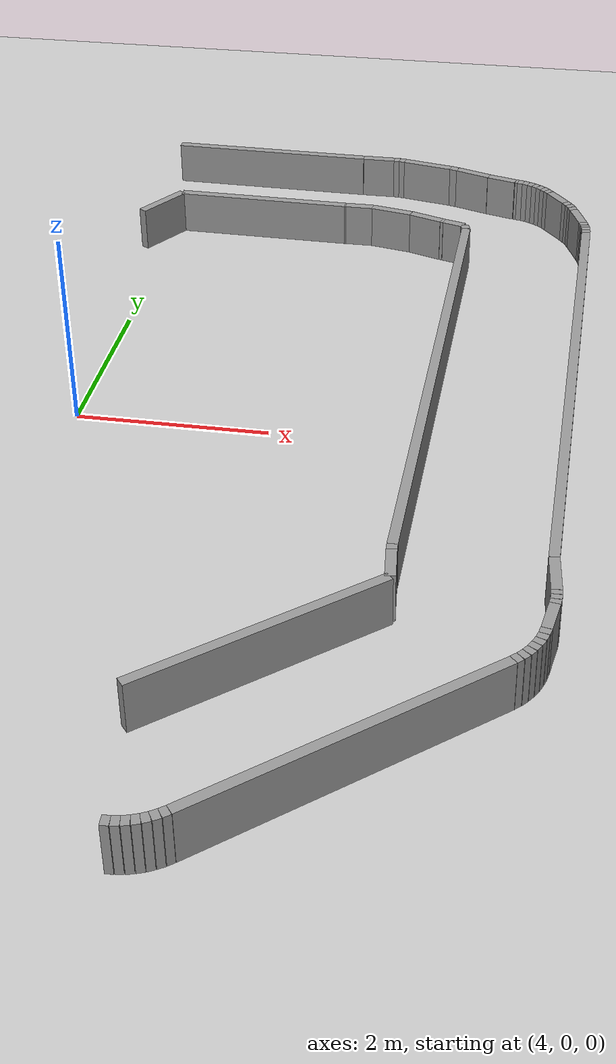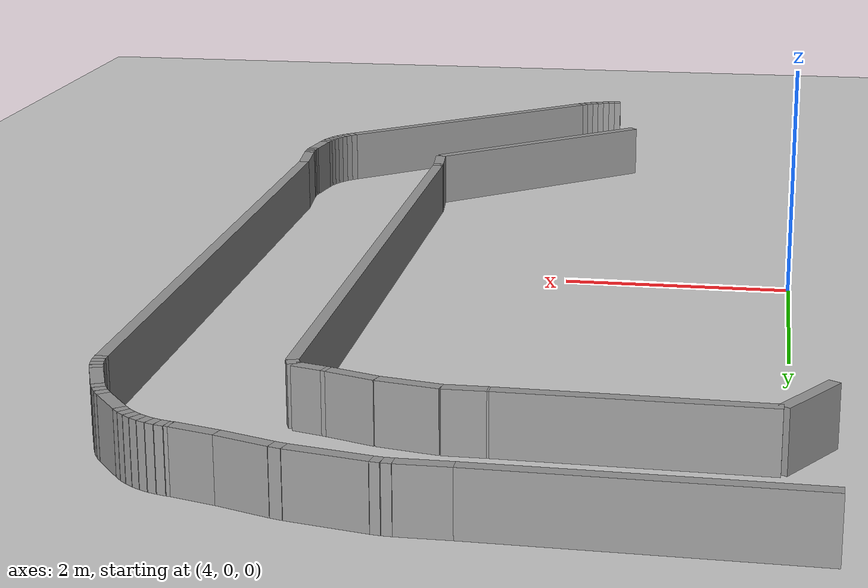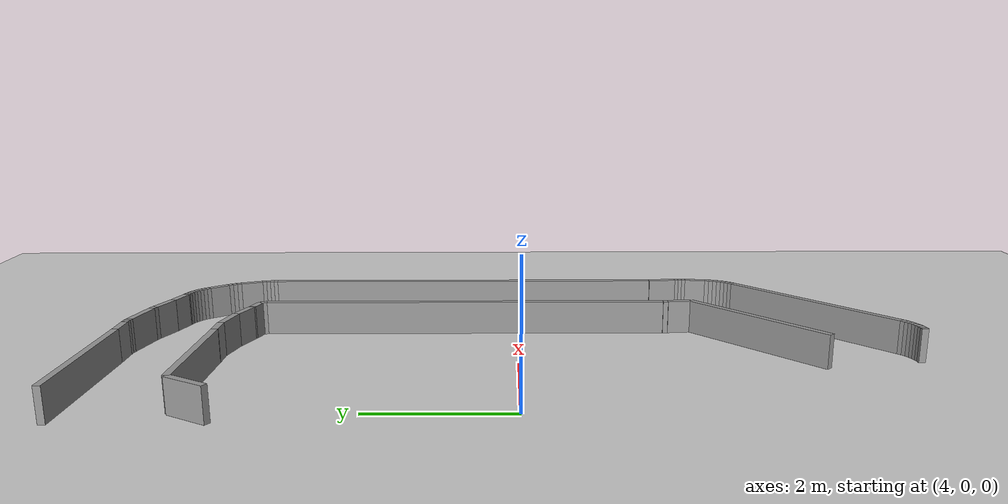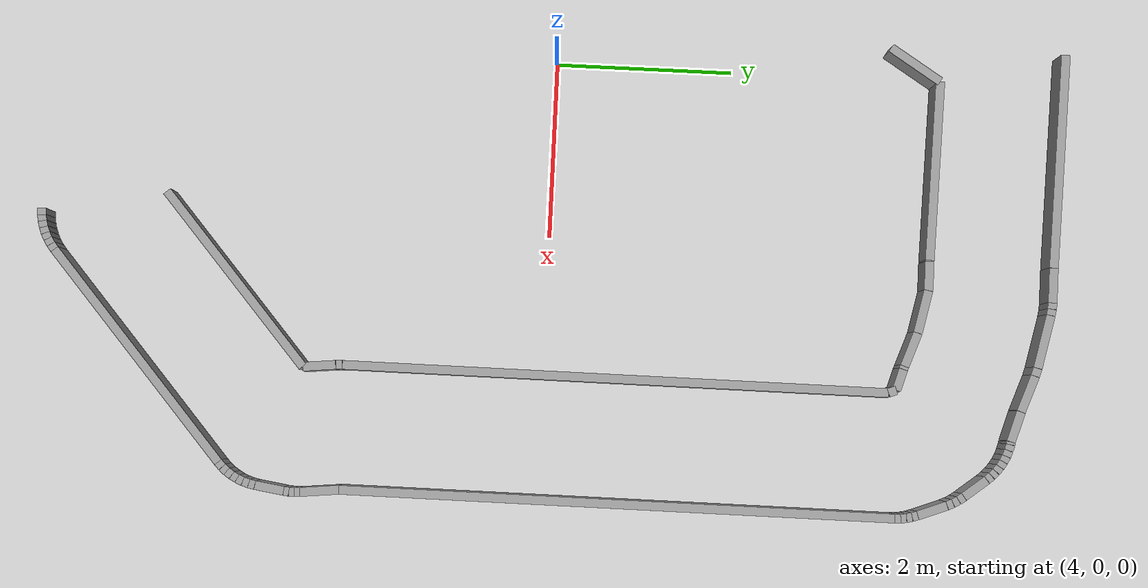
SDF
<sdf version="1.6">
 <world name="v1">
  <include><uri>model://ground_plane</uri></include>
  <include><uri>model://sun</uri></include>
  <model name="wall_17_outward">
   <static>true</static>
   <link name="link">
    <collision name="collision"><geometry><box><size>2.506928264670438 0.1 0.5</size></box></geometry></collision>
    <visual name="visual">
     <geometry><box><size>2.506928264670438 0.1 0.5</size></box></geometry>
     <material>
      <script><uri>file://media/materials/scripts/gazebo.material</uri><name>Gazebo/Gray</name></script>
     </material>
    </visual>
   </link>
   <pose>6.66666808101618 -3.5084054293398763 0.25 0 0 0.7095207262719614</pose>
  </model>
  <model name="wall_18_outward">
   <static>true</static>
   <link name="link">
    <collision name="collision">
     <geometry><box><size>0.37056761069991623 0.1 0.5</size></box></geometry>
    </collision>
    <visual name="visual">
     <geometry><box><size>0.37056761069991623 0.1 0.5</size></box></geometry>
     <material>
      <script><uri>file://media/materials/scripts/gazebo.material</uri><name>Gazebo/Gray</name></script>
     </material>
    </visual>
   </link>
   <pose>7.5982425781927585 -2.5075451039211902 0.25 0 0 1.6756732655251283</pose>
  </model>
  <model name="wall_19_outward">
   <static>true</static>
   <link name="link">
    <collision name="collision">
     <geometry><box><size>0.07616506520934263 0.1 0.5</size></box></geometry>
    </collision>
    <visual name="visual">
     <geometry><box><size>0.07616506520934263 0.1 0.5</size></box></geometry>
     <material>
      <script><uri>file://media/materials/scripts/gazebo.material</uri><name>Gazebo/Gray</name></script>
     </material>
    </visual>
   </link>
   <pose>7.576925869178128 -2.2852452633370937 0.25 0 0 1.6212427748270817</pose>
  </model>
  <model name="wall_20_outward">
   <static>true</static>
   <link name="link">
    <collision name="collision"><geometry><box><size>6.143632417097974 0.1 0.5</size></box></geometry></collision>
    <visual name="visual">
     <geometry><box><size>6.143632417097974 0.1 0.5</size></box></geometry>
     <material>
      <script><uri>file://media/materials/scripts/gazebo.material</uri><name>Gazebo/Gray</name></script>
     </material>
    </visual>
   </link>
   <pose>7.587243769862326 0.8245806522208987 0.25 0 0 1.5668122841290437</pose>
  </model>
  <model name="wall_21_outward">
   <static>true</static>
   <link name="link">
    <collision name="collision">
     <geometry><box><size>0.0931088795598669 0.1 0.5</size></box></geometry>
    </collision>
    <visual name="visual">
     <geometry><box><size>0.0931088795598669 0.1 0.5</size></box></geometry>
     <material>
      <script><uri>file://media/materials/scripts/gazebo.material</uri><name>Gazebo/Gray</name></script>
     </material>
    </visual>
   </link>
   <pose>7.58276991439347 3.9398238637712018 0.25 0 0 1.937970160613123</pose>
  </model>
  <model name="wall_22_outward">
   <static>true</static>
   <link name="link">
    <collision name="collision">
     <geometry><box><size>0.24867922691286196 0.1 0.5</size></box></geometry>
    </collision>
    <visual name="visual">
     <geometry><box><size>0.24867922691286196 0.1 0.5</size></box></geometry>
     <material>
      <script><uri>file://media/materials/scripts/gazebo.material</uri><name>Gazebo/Gray</name></script>
     </material>
    </visual>
   </link>
   <pose>7.446770708834722 4.018359697244579 0.25 0 0 2.855541211872474</pose>
  </model>
  <model name="wall_23_outward">
   <static>true</static>
   <link name="link">
    <collision name="collision">
     <geometry><box><size>0.037264419278450756 0.1 0.5</size></box></geometry>
    </collision>
    <visual name="visual">
     <geometry><box><size>0.037264419278450756 0.1 0.5</size></box></geometry>
     <material>
      <script><uri>file://media/materials/scripts/gazebo.material</uri><name>Gazebo/Gray</name></script>
     </material>
    </visual>
   </link>
   <pose>7.30975474539566 4.059175457696044 0.25 0 0 2.8289206255041255</pose>
  </model>
  <model name="wall_24_outward">
   <static>true</static>
   <link name="link">
    <collision name="collision">
     <geometry><box><size>0.40375973815055133 0.1 0.5</size></box></geometry>
    </collision>
    <visual name="visual">
     <geometry><box><size>0.40375973815055133 0.1 0.5</size></box></geometry>
     <material>
      <script><uri>file://media/materials/scripts/gazebo.material</uri><name>Gazebo/Gray</name></script>
     </material>
    </visual>
   </link>
   <pose>7.10165515250244 4.132096448285965 0.25 0 0 2.802300039135748</pose>
  </model>
  <model name="wall_25_outward">
   <static>true</static>
   <link name="link">
    <collision name="collision">
     <geometry><box><size>0.4938061741273654 0.1 0.5</size></box></geometry>
    </collision>
    <visual name="visual">
     <geometry><box><size>0.4938061741273654 0.1 0.5</size></box></geometry>
     <material>
      <script><uri>file://media/materials/scripts/gazebo.material</uri><name>Gazebo/Gray</name></script>
     </material>
    </visual>
   </link>
   <pose>6.66957109961136 4.249643065039976 0.25 0 0 2.936197264400026</pose>
  </model>
  <model name="wall_26_outward">
   <static>true</static>
   <link name="link">
    <collision name="collision">
     <geometry><box><size>0.3278578118032467 0.1 0.5</size></box></geometry>
    </collision>
    <visual name="visual">
     <geometry><box><size>0.3278578118032467 0.1 0.5</size></box></geometry>
     <material>
      <script><uri>file://media/materials/scripts/gazebo.material</uri><name>Gazebo/Gray</name></script>
     </material>
    </visual>
   </link>
   <pose>6.263928905901623 4.3 0.25 0 0 3.141592653589793</pose>
  </model>
  <model name="wall_27_outward">
   <static>true</static>
   <link name="link">
    <collision name="collision">
     <geometry><box><size>0.014430689388631847 0.1 0.5</size></box></geometry>
    </collision>
    <visual name="visual">
     <geometry><box><size>0.014430689388631847 0.1 0.5</size></box></geometry>
     <material>
      <script><uri>file://media/materials/scripts/gazebo.material</uri><name>Gazebo/Gray</name></script>
     </material>
    </visual>
   </link>
   <pose>6.092785038621474 4.300074373141511 0.25 0 0 3.1312848357769885</pose>
  </model>
  <model name="wall_28_outward">
   <static>true</static>
   <link name="link">
    <collision name="collision">
     <geometry><box><size>2.0290212172602393 0.1 0.5</size></box></geometry>
    </collision>
    <visual name="visual">
     <geometry><box><size>2.0290212172602393 0.1 0.5</size></box></geometry>
     <material>
      <script><uri>file://media/materials/scripts/gazebo.material</uri><name>Gazebo/Gray</name></script>
     </material>
    </visual>
   </link>
   <pose>5.071275046730143 4.321062045881224 0.25 0 0 3.1209770179641896</pose>
  </model>
  <model name="wall_29_outward">
   <static>true</static>
   <link name="link">
    <collision name="collision">
     <geometry><box><size>0.6713076515419215 0.1 0.5</size></box></geometry>
    </collision>
    <visual name="visual">
     <geometry><box><size>0.6713076515419215 0.1 0.5</size></box></geometry>
     <material>
      <script><uri>file://media/materials/scripts/gazebo.material</uri><name>Gazebo/Gray</name></script>
     </material>
    </visual>
   </link>
   <pose>3.8784900081086695 4.057713480713767 0.25 0 0 -2.131483321777702</pose>
  </model>
  <model name="wall_51_inward">
   <static>true</static>
   <link name="link">
    <collision name="collision">
     <geometry><box><size>0.07092170351025928 0.1 0.5</size></box></geometry>
    </collision>
    <visual name="visual">
     <geometry><box><size>0.07092170351025928 0.1 0.5</size></box></geometry>
     <material>
      <script><uri>file://media/materials/scripts/gazebo.material</uri><name>Gazebo/Gray</name></script>
     </material>
    </visual>
   </link>
   <pose>6.010415321476202 -5.723203611418287 0.25 0 0 0.05068005187656616</pose>
  </model>
  <model name="wall_52_inward">
   <static>true</static>
   <link name="link">
    <collision name="collision">
     <geometry><box><size>0.07092170351025864 0.1 0.5</size></box></geometry>
    </collision>
    <visual name="visual">
     <geometry><box><size>0.07092170351025864 0.1 0.5</size></box></geometry>
     <material>
      <script><uri>file://media/materials/scripts/gazebo.material</uri><name>Gazebo/Gray</name></script>
     </material>
    </visual>
   </link>
   <pose>6.080882423405078 -5.716036497159643 0.25 0 0 0.15204015562970646</pose>
  </model>
  <model name="wall_53_inward">
   <static>true</static>
   <link name="link">
    <collision name="collision">
     <geometry><box><size>0.0709217035102585 0.1 0.5</size></box></geometry>
    </collision>
    <visual name="visual">
     <geometry><box><size>0.0709217035102585 0.1 0.5</size></box></geometry>
     <material>
      <script><uri>file://media/materials/scripts/gazebo.material</uri><name>Gazebo/Gray</name></script>
     </material>
    </visual>
   </link>
   <pose>6.150262634040187 -5.701775839626457 0.25 0 0 0.25340025938285643</pose>
  </model>
  <model name="wall_54_inward">
   <static>true</static>
   <link name="link">
    <collision name="collision">
     <geometry><box><size>0.07092170351025935 0.1 0.5</size></box></geometry>
    </collision>
    <visual name="visual">
     <geometry><box><size>0.07092170351025935 0.1 0.5</size></box></geometry>
     <material>
      <script><uri>file://media/materials/scripts/gazebo.material</uri><name>Gazebo/Gray</name></script>
     </material>
    </visual>
   </link>
   <pose>6.2178437601347785 -5.6805680255750755 0.25 0 0 0.3547603631359682</pose>
  </model>
  <model name="wall_55_inward">
   <static>true</static>
   <link name="link">
    <collision name="collision">
     <geometry><box><size>0.07092170351025841 0.1 0.5</size></box></geometry>
    </collision>
    <visual name="visual">
     <geometry><box><size>0.07092170351025841 0.1 0.5</size></box></geometry>
     <material>
      <script><uri>file://media/materials/scripts/gazebo.material</uri><name>Gazebo/Gray</name></script>
     </material>
    </visual>
   </link>
   <pose>6.282932076184533 -5.652630754862669 0.25 0 0 0.4561204668891224</pose>
  </model>
  <model name="wall_56_inward">
   <static>true</static>
   <link name="link">
    <collision name="collision">
     <geometry><box><size>0.07092170351025935 0.1 0.5</size></box></geometry>
    </collision>
    <visual name="visual">
     <geometry><box><size>0.07092170351025935 0.1 0.5</size></box></geometry>
     <material>
      <script><uri>file://media/materials/scripts/gazebo.material</uri><name>Gazebo/Gray</name></script>
     </material>
    </visual>
   </link>
   <pose>6.34485944557371 -5.618250805741306 0.25 0 0 0.5574805706422573</pose>
  </model>
  <model name="wall_57_inward">
   <static>true</static>
   <link name="link">
    <collision name="collision">
     <geometry><box><size>0.0709217035102584 0.1 0.5</size></box></geometry>
    </collision>
    <visual name="visual">
     <geometry><box><size>0.0709217035102584 0.1 0.5</size></box></geometry>
     <material>
      <script><uri>file://media/materials/scripts/gazebo.material</uri><name>Gazebo/Gray</name></script>
     </material>
    </visual>
   </link>
   <pose>6.402990179049358 -5.577781091056938 0.25 0 0 0.6588406743953945</pose>
  </model>
  <model name="wall_58_inward">
   <static>true</static>
   <link name="link">
    <collision name="collision">
     <geometry><box><size>3.0316043607304715 0.1 0.5</size></box></geometry>
    </collision>
    <visual name="visual">
     <geometry><box><size>3.0316043607304715 0.1 0.5</size></box></geometry>
     <material>
      <script><uri>file://media/materials/scripts/gazebo.material</uri><name>Gazebo/Gray</name></script>
     </material>
    </visual>
   </link>
   <pose>7.581029163273431 -4.568571936976653 0.25 0 0 0.7095207262719609</pose>
  </model>
  <model name="wall_59_inward">
   <static>true</static>
   <link name="link">
    <collision name="collision">
     <geometry><box><size>0.07083237279538644 0.1 0.5</size></box></geometry>
    </collision>
    <visual name="visual">
     <geometry><box><size>0.07083237279538644 0.1 0.5</size></box></geometry>
     <material>
      <script><uri>file://media/materials/scripts/gazebo.material</uri><name>Gazebo/Gray</name></script>
     </material>
    </visual>
   </link>
   <pose>8.756696750357008 -3.556669452835419 0.25 0 0 0.7601368885668066</pose>
  </model>
  <model name="wall_60_inward">
   <static>true</static>
   <link name="link">
    <collision name="collision">
     <geometry><box><size>0.07083237279538719 0.1 0.5</size></box></geometry>
    </collision>
    <visual name="visual">
     <geometry><box><size>0.07083237279538719 0.1 0.5</size></box></geometry>
     <material>
      <script><uri>file://media/materials/scripts/gazebo.material</uri><name>Gazebo/Gray</name></script>
     </material>
    </visual>
   </link>
   <pose>8.805434413242434 -3.505395462196538 0.25 0 0 0.8613692131564508</pose>
  </model>
  <model name="wall_61_inward">
   <static>true</static>
   <link name="link">
    <collision name="collision">
     <geometry><box><size>0.0708323727953863 0.1 0.5</size></box></geometry>
    </collision>
    <visual name="visual">
     <geometry><box><size>0.0708323727953863 0.1 0.5</size></box></geometry>
     <material>
      <script><uri>file://media/materials/scripts/gazebo.material</uri><name>Gazebo/Gray</name></script>
     </material>
    </visual>
   </link>
   <pose>8.848740833642182 -3.4494585705084058 0.25 0 0 0.9626015377461361</pose>
  </model>
  <model name="wall_62_inward">
   <static>true</static>
   <link name="link">
    <collision name="collision">
     <geometry><box><size>0.07083237279538693 0.1 0.5</size></box></geometry>
    </collision>
    <visual name="visual">
     <geometry><box><size>0.07083237279538693 0.1 0.5</size></box></geometry>
     <material>
      <script><uri>file://media/materials/scripts/gazebo.material</uri><name>Gazebo/Gray</name></script>
     </material>
    </visual>
   </link>
   <pose>8.886172586950858 -3.389431528737152 0.25 0 0 1.063833862335799</pose>
  </model>
  <model name="wall_63_inward">
   <static>true</static>
   <link name="link">
    <collision name="collision">
     <geometry><box><size>0.07083237279538693 0.1 0.5</size></box></geometry>
    </collision>
    <visual name="visual">
     <geometry><box><size>0.07083237279538693 0.1 0.5</size></box></geometry>
     <material>
      <script><uri>file://media/materials/scripts/gazebo.material</uri><name>Gazebo/Gray</name></script>
     </material>
    </visual>
   </link>
   <pose>8.917346400658598 -3.3259289678558406 0.25 0 0 1.1650661869254562</pose>
  </model>
  <model name="wall_64_inward">
   <static>true</static>
   <link name="link">
    <collision name="collision">
     <geometry><box><size>0.07083237279538641 0.1 0.5</size></box></geometry>
    </collision>
    <visual name="visual">
     <geometry><box><size>0.07083237279538641 0.1 0.5</size></box></geometry>
     <material>
      <script><uri>file://media/materials/scripts/gazebo.material</uri><name>Gazebo/Gray</name></script>
     </material>
    </visual>
   </link>
   <pose>8.941943078768261 -3.2596011054936405 0.25 0 0 1.2662985115151422</pose>
  </model>
  <model name="wall_65_inward">
   <static>true</static>
   <link name="link">
    <collision name="collision">
     <geometry><box><size>0.07083237279538664 0.1 0.5</size></box></geometry>
    </collision>
    <visual name="visual">
     <geometry><box><size>0.07083237279538664 0.1 0.5</size></box></geometry>
     <material>
      <script><uri>file://media/materials/scripts/gazebo.material</uri><name>Gazebo/Gray</name></script>
     </material>
    </visual>
   </link>
   <pose>8.9597107701182 -3.19112708820487 0.25 0 0 1.3675308361047953</pose>
  </model>
  <model name="wall_66_inward">
   <static>true</static>
   <link name="link">
    <collision name="collision">
     <geometry><box><size>0.3288236609491472 0.1 0.5</size></box></geometry>
    </collision>
    <visual name="visual">
     <geometry><box><size>0.3288236609491472 0.1 0.5</size></box></geometry>
     <material>
      <script><uri>file://media/materials/scripts/gazebo.material</uri><name>Gazebo/Gray</name></script>
     </material>
    </visual>
   </link>
   <pose>8.991860188355432 -2.9939400289777565 0.25 0 0 1.4181469983996347</pose>
  </model>
  <model name="wall_67_inward">
   <static>true</static>
   <link name="link">
    <collision name="collision">
     <geometry><box><size>0.06007101439983301 0.1 0.5</size></box></geometry>
    </collision>
    <visual name="visual">
     <geometry><box><size>0.06007101439983301 0.1 0.5</size></box></geometry>
     <material>
      <script><uri>file://media/materials/scripts/gazebo.material</uri><name>Gazebo/Gray</name></script>
     </material>
    </visual>
   </link>
   <pose>9.020149323372436 -2.8015851586280776 0.25 0 0 1.461068042920566</pose>
  </model>
  <model name="wall_68_inward">
   <static>true</static>
   <link name="link">
    <collision name="collision">
     <geometry><box><size>0.06007101439983357 0.1 0.5</size></box></geometry>
    </collision>
    <visual name="visual">
     <geometry><box><size>0.06007101439983357 0.1 0.5</size></box></geometry>
     <material>
      <script><uri>file://media/materials/scripts/gazebo.material</uri><name>Gazebo/Gray</name></script>
     </material>
    </visual>
   </link>
   <pose>9.024155824146227 -2.7417033490549736 0.25 0 0 1.54691013196237</pose>
  </model>
  <model name="wall_69_inward">
   <static>true</static>
   <link name="link">
    <collision name="collision">
     <geometry><box><size>0.06007101439983296 0.1 0.5</size></box></geometry>
    </collision>
    <visual name="visual">
     <geometry><box><size>0.06007101439983296 0.1 0.5</size></box></geometry>
     <material>
      <script><uri>file://media/materials/scripts/gazebo.material</uri><name>Gazebo/Gray</name></script>
     </material>
    </visual>
   </link>
   <pose>9.023013503473999 -2.6816985303344603 0.25 0 0 1.6327522210042302</pose>
  </model>
  <model name="wall_70_inward">
   <static>true</static>
   <link name="link">
    <collision name="collision">
     <geometry><box><size>0.4394853138889126 0.1 0.5</size></box></geometry>
    </collision>
    <visual name="visual">
     <geometry><box><size>0.4394853138889126 0.1 0.5</size></box></geometry>
     <material>
      <script><uri>file://media/materials/scripts/gazebo.material</uri><name>Gazebo/Gray</name></script>
     </material>
    </visual>
   </link>
   <pose>8.998150104353332 -2.433185380266672 0.25 0 0 1.6756732655251259</pose>
  </model>
  <model name="wall_71_inward">
   <static>true</static>
   <link name="link">
    <collision name="collision"><geometry><box><size>6.236910785124535 0.1 0.5</size></box></geometry></collision>
    <visual name="visual">
     <geometry><box><size>6.236910785124535 0.1 0.5</size></box></geometry>
     <material>
      <script><uri>file://media/materials/scripts/gazebo.material</uri><name>Gazebo/Gray</name></script>
     </material>
    </visual>
   </link>
   <pose>8.987570418130222 0.9037805339077933 0.25 0 0 1.5668122841290435</pose>
  </model>
  <model name="wall_72_inward">
   <static>true</static>
   <link name="link">
    <collision name="collision">
     <geometry><box><size>0.06492932944659807 0.1 0.5</size></box></geometry>
    </collision>
    <visual name="visual">
     <geometry><box><size>0.06492932944659807 0.1 0.5</size></box></geometry>
     <material>
      <script><uri>file://media/materials/scripts/gazebo.material</uri><name>Gazebo/Gray</name></script>
     </material>
    </visual>
   </link>
   <pose>8.99861800841733 4.054646650053741 0.25 0 0 1.613207018689567</pose>
  </model>
  <model name="wall_73_inward">
   <static>true</static>
   <link name="link">
    <collision name="collision">
     <geometry><box><size>0.06492932944659817 0.1 0.5</size></box></geometry>
    </collision>
    <visual name="visual">
     <geometry><box><size>0.06492932944659817 0.1 0.5</size></box></geometry>
     <material>
      <script><uri>file://media/materials/scripts/gazebo.material</uri><name>Gazebo/Gray</name></script>
     </material>
    </visual>
   </link>
   <pose>8.992865703965954 4.119250526853523 0.25 0 0 1.7059964878105542</pose>
  </model>
  <model name="wall_74_inward">
   <static>true</static>
   <link name="link">
    <collision name="collision">
     <geometry><box><size>0.06492932944659884 0.1 0.5</size></box></geometry>
    </collision>
    <visual name="visual">
     <geometry><box><size>0.06492932944659884 0.1 0.5</size></box></geometry>
     <material>
      <script><uri>file://media/materials/scripts/gazebo.material</uri><name>Gazebo/Gray</name></script>
     </material>
    </visual>
   </link>
   <pose>8.98115218403846 4.183043499467839 0.25 0 0 1.798785956931613</pose>
  </model>
  <model name="wall_75_inward">
   <static>true</static>
   <link name="link">
    <collision name="collision">
     <geometry><box><size>0.06492932944659816 0.1 0.5</size></box></geometry>
    </collision>
    <visual name="visual">
     <geometry><box><size>0.06492932944659816 0.1 0.5</size></box></geometry>
     <material>
      <script><uri>file://media/materials/scripts/gazebo.material</uri><name>Gazebo/Gray</name></script>
     </material>
    </visual>
   </link>
   <pose>8.963578228361524 4.245476711670382 0.25 0 0 1.8915754260525908</pose>
  </model>
  <model name="wall_76_inward">
   <static>true</static>
   <link name="link">
    <collision name="collision">
     <geometry><box><size>0.34820970692960235 0.1 0.5</size></box></geometry>
    </collision>
    <visual name="visual">
     <geometry><box><size>0.34820970692960235 0.1 0.5</size></box></geometry>
     <material>
      <script><uri>file://media/materials/scripts/gazebo.material</uri><name>Gazebo/Gray</name></script>
     </material>
    </visual>
   </link>
   <pose>8.890841924342142 4.438785355516209 0.25 0 0 1.9379701606131166</pose>
  </model>
  <model name="wall_77_inward">
   <static>true</static>
   <link name="link">
    <collision name="collision">
     <geometry><box><size>0.07173423287851564 0.1 0.5</size></box></geometry>
    </collision>
    <visual name="visual">
     <geometry><box><size>0.07173423287851564 0.1 0.5</size></box></geometry>
     <material>
      <script><uri>file://media/materials/scripts/gazebo.material</uri><name>Gazebo/Gray</name></script>
     </material>
    </visual>
   </link>
   <pose>8.813768003516572 4.6340580708971055 0.25 0 0 1.9892313453473525</pose>
  </model>
  <model name="wall_78_inward">
   <static>true</static>
   <link name="link">
    <collision name="collision">
     <geometry><box><size>0.07173423287851552 0.1 0.5</size></box></geometry>
    </collision>
    <visual name="visual">
     <geometry><box><size>0.07173423287851552 0.1 0.5</size></box></geometry>
     <material>
      <script><uri>file://media/materials/scripts/gazebo.material</uri><name>Gazebo/Gray</name></script>
     </material>
    </visual>
   </link>
   <pose>8.781342633278959 4.69793988133968 0.25 0 0 2.0917537148157725</pose>
  </model>
  <model name="wall_79_inward">
   <static>true</static>
   <link name="link">
    <collision name="collision">
     <geometry><box><size>0.07173423287851549 0.1 0.5</size></box></geometry>
    </collision>
    <visual name="visual">
     <geometry><box><size>0.07173423287851549 0.1 0.5</size></box></geometry>
     <material>
      <script><uri>file://media/materials/scripts/gazebo.material</uri><name>Gazebo/Gray</name></script>
     </material>
    </visual>
   </link>
   <pose>8.742549675238518 4.758167754844728 0.25 0 0 2.1942760842842257</pose>
  </model>
  <model name="wall_80_inward">
   <static>true</static>
   <link name="link">
    <collision name="collision">
     <geometry><box><size>0.3201562118716431 0.1 0.5</size></box></geometry>
    </collision>
    <visual name="visual">
     <geometry><box><size>0.3201562118716431 0.1 0.5</size></box></geometry>
     <material>
      <script><uri>file://media/materials/scripts/gazebo.material</uri><name>Gazebo/Gray</name></script>
     </material>
    </visual>
   </link>
   <pose>8.62160816661012 4.912286533288098 0.25 0 0 2.245537269018452</pose>
  </model>
  <model name="wall_81_inward">
   <static>true</static>
   <link name="link">
    <collision name="collision">
     <geometry><box><size>0.06966441530339844 0.1 0.5</size></box></geometry>
    </collision>
    <visual name="visual">
     <geometry><box><size>0.06966441530339844 0.1 0.5</size></box></geometry>
     <material>
      <script><uri>file://media/materials/scripts/gazebo.material</uri><name>Gazebo/Gray</name></script>
     </material>
    </visual>
   </link>
   <pose>8.498522165467406 5.063369463359884 0.25 0 0 2.295318123716862</pose>
  </model>
  <model name="wall_82_inward">
   <static>true</static>
   <link name="link">
    <collision name="collision">
     <geometry><box><size>0.06966441530339748 0.1 0.5</size></box></geometry>
    </collision>
    <visual name="visual">
     <geometry><box><size>0.06966441530339748 0.1 0.5</size></box></geometry>
     <material>
      <script><uri>file://media/materials/scripts/gazebo.material</uri><name>Gazebo/Gray</name></script>
     </material>
    </visual>
   </link>
   <pose>8.449871916098015 5.113111469966817 0.25 0 0 2.394879833113671</pose>
  </model>
  <model name="wall_83_inward">
   <static>true</static>
   <link name="link">
    <collision name="collision">
     <geometry><box><size>0.06966441530339872 0.1 0.5</size></box></geometry>
    </collision>
    <visual name="visual">
     <geometry><box><size>0.06966441530339872 0.1 0.5</size></box></geometry>
     <material>
      <script><uri>file://media/materials/scripts/gazebo.material</uri><name>Gazebo/Gray</name></script>
     </material>
    </visual>
   </link>
   <pose>8.396518369783994 5.157771441761544 0.25 0 0 2.4944415425104998</pose>
  </model>
  <model name="wall_84_inward">
   <static>true</static>
   <link name="link">
    <collision name="collision">
     <geometry><box><size>0.06966441530339744 0.1 0.5</size></box></geometry>
    </collision>
    <visual name="visual">
     <geometry><box><size>0.06966441530339744 0.1 0.5</size></box></geometry>
     <material>
      <script><uri>file://media/materials/scripts/gazebo.material</uri><name>Gazebo/Gray</name></script>
     </material>
    </visual>
   </link>
   <pose>8.338989958641157 5.196907050819904 0.25 0 0 2.5940032519072984</pose>
  </model>
  <model name="wall_85_inward">
   <static>true</static>
   <link name="link">
    <collision name="collision">
     <geometry><box><size>0.06966441530339786 0.1 0.5</size></box></geometry>
    </collision>
    <visual name="visual">
     <geometry><box><size>0.06966441530339786 0.1 0.5</size></box></geometry>
     <material>
      <script><uri>file://media/materials/scripts/gazebo.material</uri><name>Gazebo/Gray</name></script>
     </material>
    </visual>
   </link>
   <pose>8.277856464101477 5.230130684431459 0.25 0 0 2.6935649613041313</pose>
  </model>
  <model name="wall_86_inward">
   <static>true</static>
   <link name="link">
    <collision name="collision">
     <geometry><box><size>0.0696644153033984 0.1 0.5</size></box></geometry>
    </collision>
    <visual name="visual">
     <geometry><box><size>0.0696644153033984 0.1 0.5</size></box></geometry>
     <material>
      <script><uri>file://media/materials/scripts/gazebo.material</uri><name>Gazebo/Gray</name></script>
     </material>
    </visual>
   </link>
   <pose>8.213723373599215 5.257113284150851 0.25 0 0 2.793126670700939</pose>
  </model>
  <model name="wall_87_inward">
   <static>true</static>
   <link name="link">
    <collision name="collision">
     <geometry><box><size>0.06966441530339862 0.1 0.5</size></box></geometry>
    </collision>
    <visual name="visual">
     <geometry><box><size>0.06966441530339862 0.1 0.5</size></box></geometry>
     <material>
      <script><uri>file://media/materials/scripts/gazebo.material</uri><name>Gazebo/Gray</name></script>
     </material>
    </visual>
   </link>
   <pose>8.147225883612382 5.277587604907323 0.25 0 0 2.8926883800977525</pose>
  </model>
  <model name="wall_88_inward">
   <static>true</static>
   <link name="link">
    <collision name="collision">
     <geometry><box><size>0.03236676891790596 0.1 0.5</size></box></geometry>
    </collision>
    <visual name="visual">
     <geometry><box><size>0.03236676891790596 0.1 0.5</size></box></geometry>
     <material>
      <script><uri>file://media/materials/scripts/gazebo.material</uri><name>Gazebo/Gray</name></script>
     </material>
    </visual>
   </link>
   <pose>8.097463853653046 5.288576139918476 0.25 0 0 2.992250089494566</pose>
  </model>
  <model name="wall_89_inward">
   <static>true</static>
   <link name="link">
    <collision name="collision">
     <geometry><box><size>0.3555086592632795 0.1 0.5</size></box></geometry>
    </collision>
    <visual name="visual">
     <geometry><box><size>0.3555086592632795 0.1 0.5</size></box></geometry>
     <material>
      <script><uri>file://media/materials/scripts/gazebo.material</uri><name>Gazebo/Gray</name></script>
     </material>
    </visual>
   </link>
   <pose>7.910929233058949 5.3411403198455165 0.25 0 0 2.8555412118724752</pose>
  </model>
  <model name="wall_90_inward">
   <static>true</static>
   <link name="link">
    <collision name="collision">
     <geometry><box><size>0.43205509593383107 0.1 0.5</size></box></geometry>
    </collision>
    <visual name="visual">
     <geometry><box><size>0.43205509593383107 0.1 0.5</size></box></geometry>
     <material>
      <script><uri>file://media/materials/scripts/gazebo.material</uri><name>Gazebo/Gray</name></script>
     </material>
    </visual>
   </link>
   <pose>7.536685971935011 5.4631949195596405 0.25 0 0 2.802300039135748</pose>
  </model>
  <model name="wall_91_inward">
   <static>true</static>
   <link name="link">
    <collision name="collision">
     <geometry><box><size>0.0936580566918448 0.1 0.5</size></box></geometry>
    </collision>
    <visual name="visual">
     <geometry><box><size>0.0936580566918448 0.1 0.5</size></box></geometry>
     <material>
      <script><uri>file://media/materials/scripts/gazebo.material</uri><name>Gazebo/Gray</name></script>
     </material>
    </visual>
   </link>
   <pose>7.287871030146498 5.547689763662174 0.25 0 0 2.8692486517678844</pose>
  </model>
  <model name="wall_92_inward">
   <static>true</static>
   <link name="link">
    <collision name="collision">
     <geometry><box><size>0.6128825336065628 0.1 0.5</size></box></geometry>
    </collision>
    <visual name="visual">
     <geometry><box><size>0.6128825336065628 0.1 0.5</size></box></geometry>
     <material>
      <script><uri>file://media/materials/scripts/gazebo.material</uri><name>Gazebo/Gray</name></script>
     </material>
    </visual>
   </link>
   <pose>6.9427679778784 5.622786293816324 0.25 0 0 2.936197264400026</pose>
  </model>
  <model name="wall_93_inward">
   <static>true</static>
   <link name="link">
    <collision name="collision">
     <geometry><box><size>0.07185679898034487 0.1 0.5</size></box></geometry>
    </collision>
    <visual name="visual">
     <geometry><box><size>0.07185679898034487 0.1 0.5</size></box></geometry>
     <material>
      <script><uri>file://media/materials/scripts/gazebo.material</uri><name>Gazebo/Gray</name></script>
     </material>
    </visual>
   </link>
   <pose>6.607265032556571 5.69079907563684 0.25 0 0 2.987546111697467</pose>
  </model>
  <model name="wall_94_inward">
   <static>true</static>
   <link name="link">
    <collision name="collision">
     <geometry><box><size>0.07185679898034385 0.1 0.5</size></box></geometry>
    </collision>
    <visual name="visual">
     <geometry><box><size>0.07185679898034385 0.1 0.5</size></box></geometry>
     <material>
      <script><uri>file://media/materials/scripts/gazebo.material</uri><name>Gazebo/Gray</name></script>
     </material>
    </visual>
   </link>
   <pose>6.535881043617371 5.698155928728678 0.25 0 0 3.090243806292354</pose>
  </model>
  <model name="wall_95_inward">
   <static>true</static>
   <link name="link">
    <collision name="collision">
     <geometry><box><size>0.39278427196953114 0.1 0.5</size></box></geometry>
    </collision>
    <visual name="visual">
     <geometry><box><size>0.39278427196953114 0.1 0.5</size></box></geometry>
     <material>
      <script><uri>file://media/materials/scripts/gazebo.material</uri><name>Gazebo/Gray</name></script>
     </material>
    </visual>
   </link>
   <pose>6.303607864015234 5.7 0.25 0 0 3.141592653589793</pose>
  </model>
  <model name="wall_96_inward">
   <static>true</static>
   <link name="link">
    <collision name="collision">
     <geometry><box><size>2.4182996811145605 0.1 0.5</size></box></geometry>
    </collision>
    <visual name="visual">
     <geometry><box><size>2.4182996811145605 0.1 0.5</size></box></geometry>
     <material>
      <script><uri>file://media/materials/scripts/gazebo.material</uri><name>Gazebo/Gray</name></script>
     </material>
    </visual>
   </link>
   <pose>4.89832282539376 5.724925626858489 0.25 0 0 3.1209770179641896</pose>
  </model>
 </world>
</sdf>
